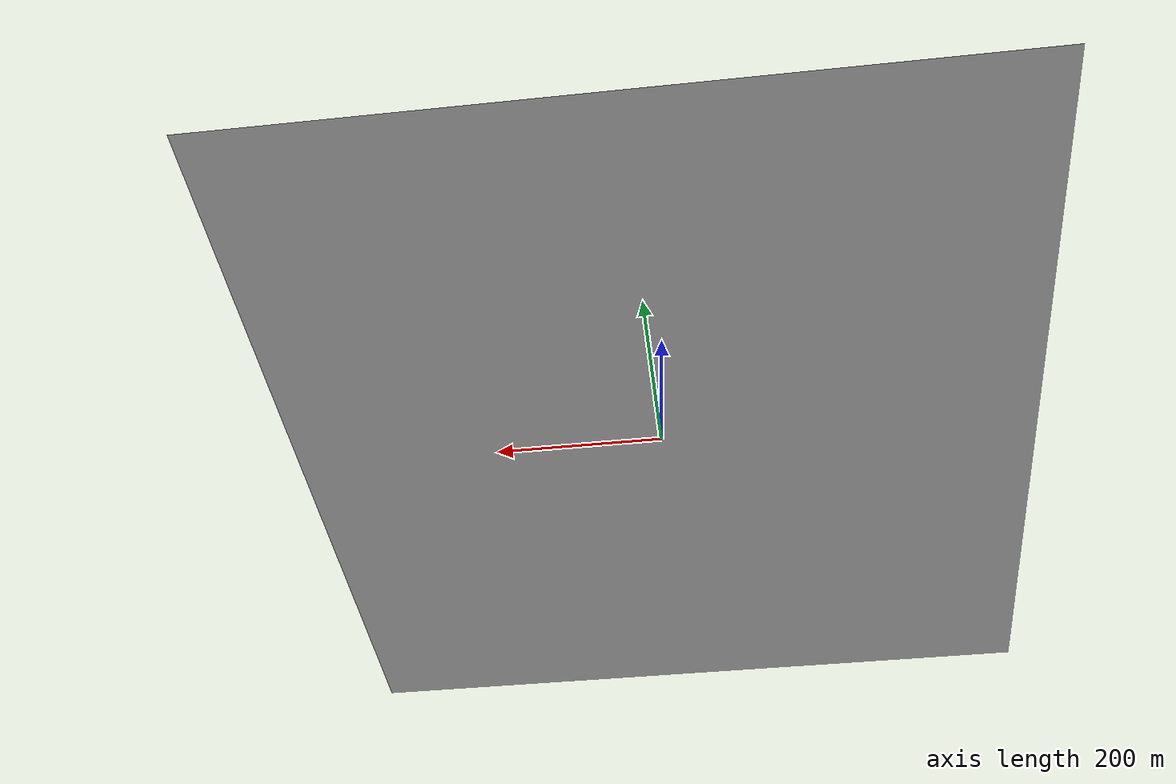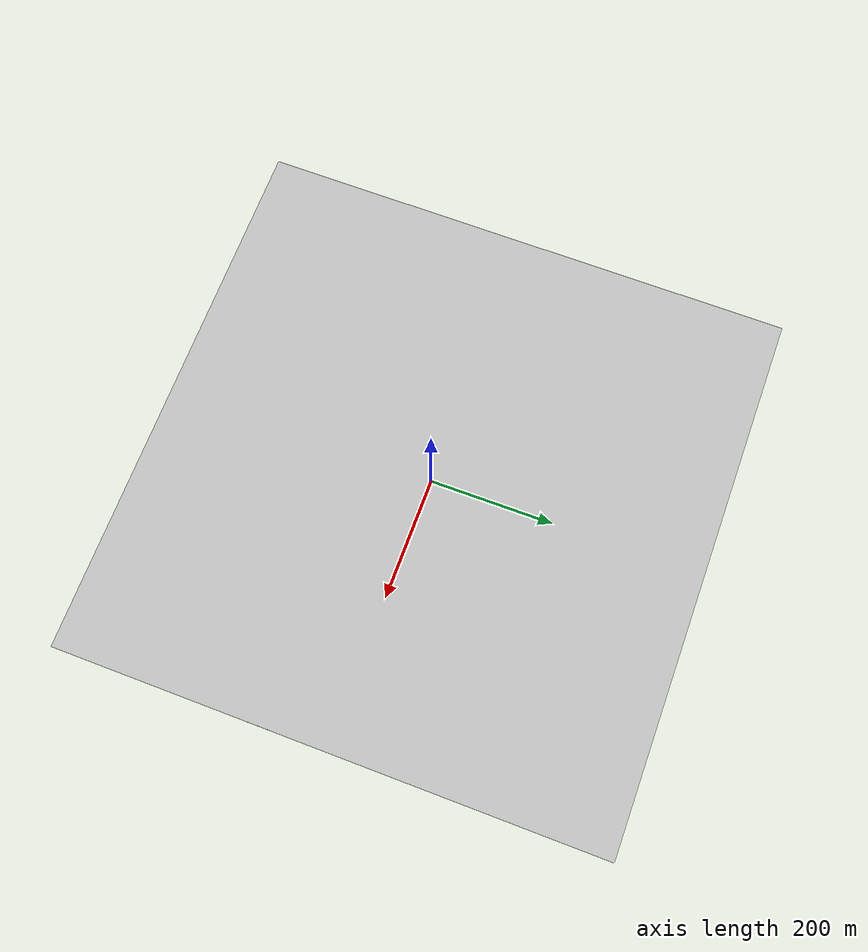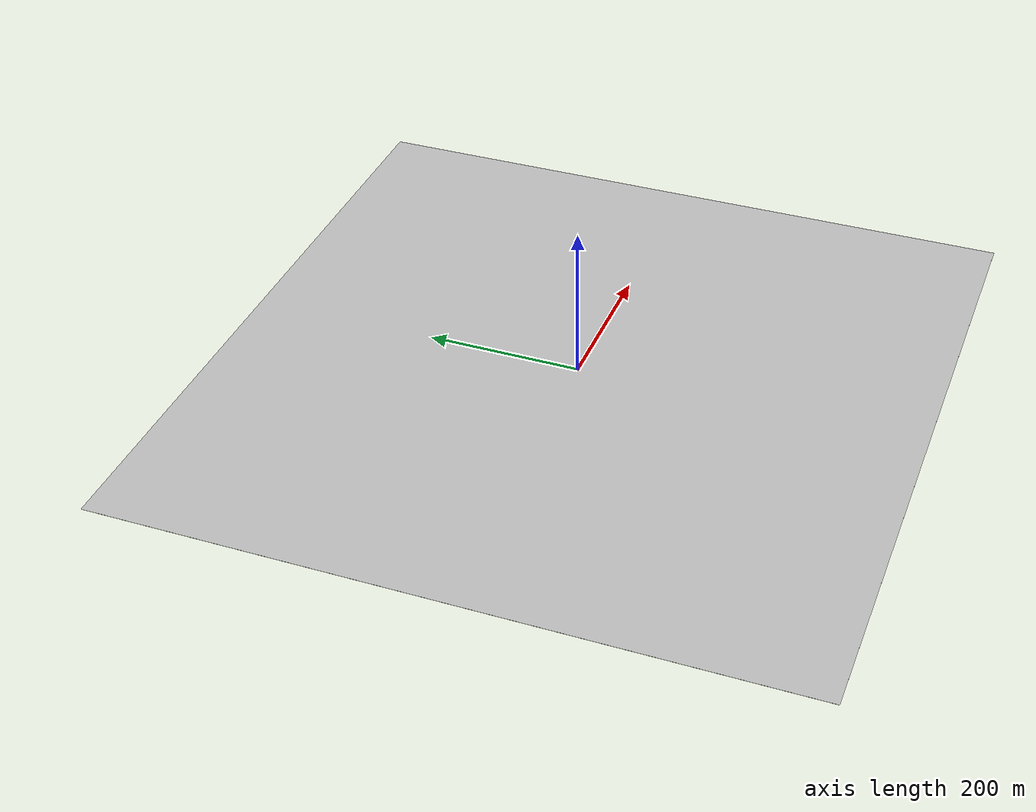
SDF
<?xml version="1.0" ?>
<sdf version="1.5">
  <model name="Hacienda_de_Oran">
    <static>true</static>
    <link name="floor">
      <collision name="collision">
        <geometry>
          <box>
            <size>890.09 890.09 .1</size>
          </box>
        </geometry>
      </collision>
      <visual name="visual">
        <cast_shadows>false</cast_shadows>
        <geometry>
          <box>
            <size>890.09 890.09 .1</size>
          </box>
        </geometry>
        <material>
          <script>
            <uri>model://Hacienda_de_Oran/materials/scripts</uri>
            <uri>model://Hacienda_de_Oran/materials/textures</uri>
            <name>Hacienda_de_Oran</name>
          </script>
        </material>
      </visual>
    </link>
  </model>
</sdf>
